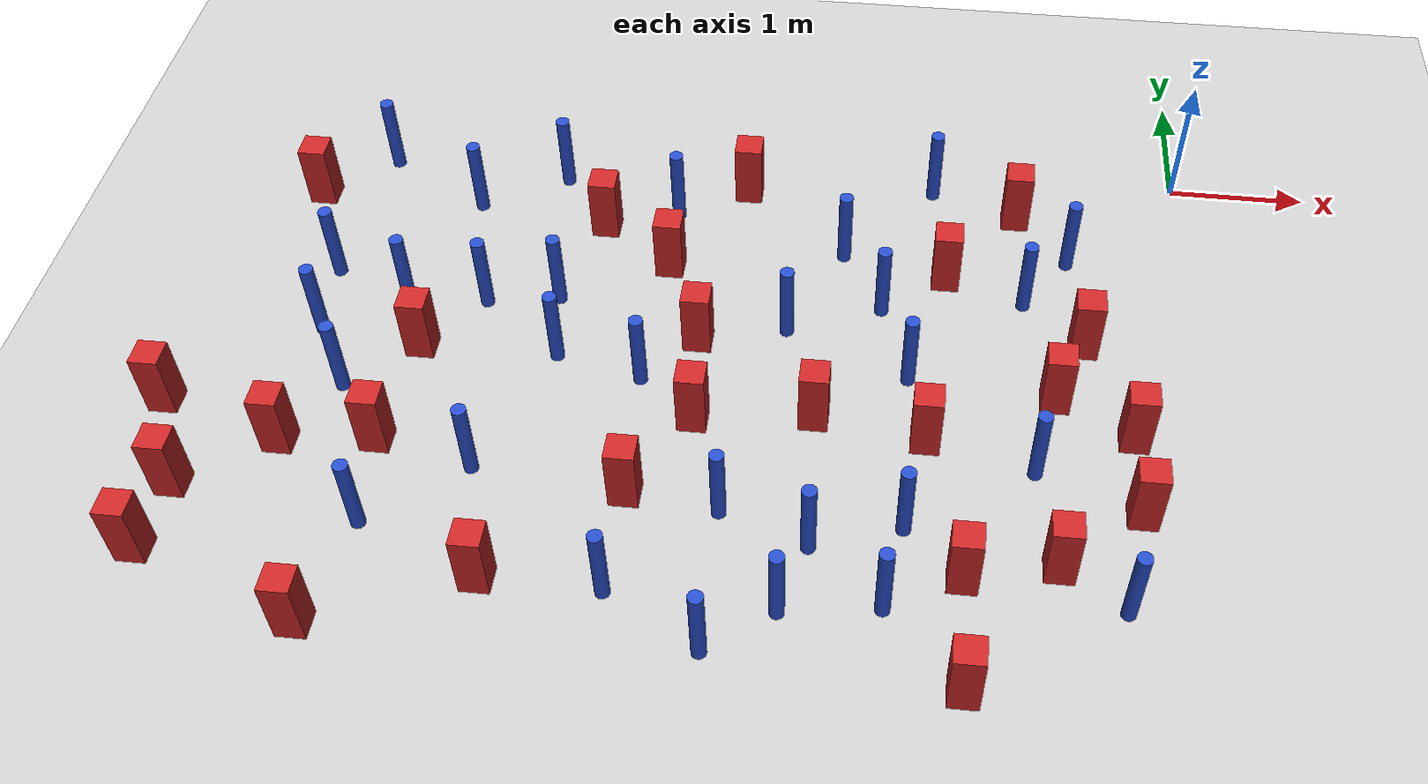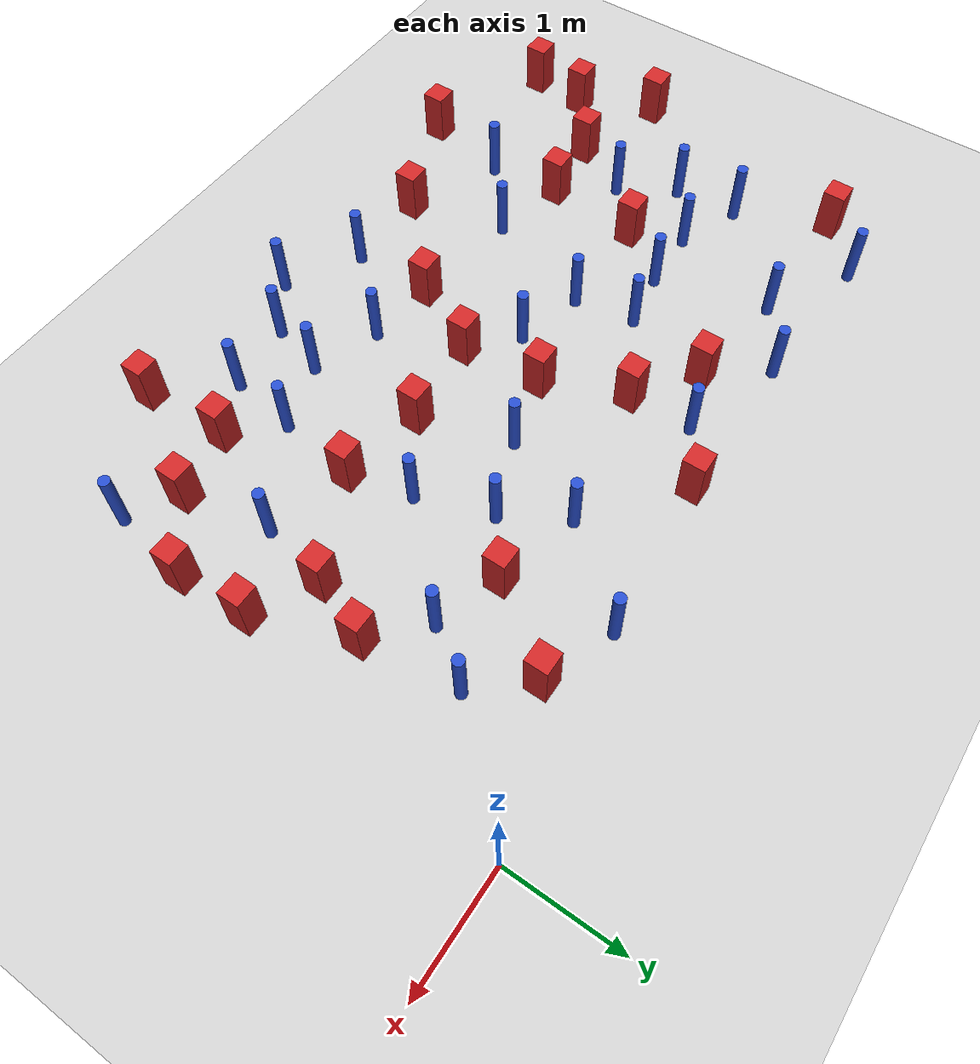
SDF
<sdf version="1.6">
 <world name="default">
  <model name="ground_plane">
   <static>1</static>
   <link name="link">
    <collision name="collision">
     <geometry><plane><normal>0 0 1</normal><size>100 100</size></plane></geometry>
     <surface><friction><ode><mu>100</mu><mu2>50</mu2></ode></friction></surface>
    </collision>
    <visual name="visual">
     <cast_shadows>0</cast_shadows>
     <geometry><plane><normal>0 0 1</normal><size>100 100</size></plane></geometry>
     <material>
      <ambient>1.0 1.0 1.0 1.0</ambient>
      <diffuse>0.8 0.8 0.8 1.0</diffuse>
      <specular>0.01 0.01 0.01 1.000000</specular>
     </material>
    </visual>
   </link>
  </model>
  <model name="square_post_obstacle0">
   <static>true</static>
   <pose>-5.44429254474 -3.06406377027 -6.11067671241e-07 -5.50515727128e-06 -8.79689657224e-07 2.37013304536e-05</pose>
   <link name="link">
    <pose>0 0 0.25 0 -0 0</pose>
    <inertial>
     <mass>100</mass>
     <inertia>
      <ixx>0.166667</ixx>
      <ixy>0</ixy>
      <ixz>0</ixz>
      <iyy>0.166667</iyy>
      <iyz>0</iyz>
      <izz>0.166667</izz>
     </inertia>
    </inertial>
    <collision name="collision"><geometry><box><size>.2 .2 .5</size></box></geometry></collision>
    <visual name="visual">
     <geometry><box><size>.2 .2 .5</size></box></geometry>
     <material>
      <script><name>Gazebo/Red</name><uri>file://media/materials/scripts/gazebo.material</uri></script>
     </material>
    </visual>
   </link>
  </model>
  <model name="pole_obstacle0">
   <static>true</static>
   <pose>-1.83436711731 -0.227464030052 -9.47619616065e-06 5.49618799737e-07 2.36310414055e-07 -1.55090534804e-07</pose>
   <link name="link">
    <pose>0 0 0.3 0 -0 0</pose>
    <inertial>
     <mass>1</mass>
     <inertia><ixx>0.145833</ixx><ixy>0</ixy><ixz>0</ixz><iyy>0.145833</iyy><iyz>0</iyz><izz>0.125</izz></inertia>
    </inertial>
    <collision name="collision">
     <geometry><cylinder><radius>0.05</radius><length>.6</length></cylinder></geometry>
    </collision>
    <visual name="visual">
     <geometry><cylinder><radius>0.05</radius><length>.6</length></cylinder></geometry>
     <material>
      <script><name>Gazebo/Blue</name><uri>file://media/materials/scripts/gazebo.material</uri></script>
     </material>
    </visual>
   </link>
  </model>
  <model name="pole_obstacle5">
   <static>true</static>
   <pose>-5.575924807 -1.74550367517 -9.47619616065e-06 5.49618799738e-07 2.36310414071e-07 -1.55090534796e-07</pose>
   <link name="link">
    <pose>0 0 0.3 0 -0 0</pose>
    <inertial>
     <mass>1</mass>
     <inertia><ixx>0.145833</ixx><ixy>0</ixy><ixz>0</ixz><iyy>0.145833</iyy><iyz>0</iyz><izz>0.125</izz></inertia>
    </inertial>
    <collision name="collision">
     <geometry><cylinder><radius>0.05</radius><length>.6</length></cylinder></geometry>
    </collision>
    <visual name="visual">
     <geometry><cylinder><radius>0.05</radius><length>.6</length></cylinder></geometry>
     <material>
      <script><name>Gazebo/Blue</name><uri>file://media/materials/scripts/gazebo.material</uri></script>
     </material>
    </visual>
   </link>
  </model>
  <model name="square_post_obstacle8">
   <static>true</static>
   <pose>-4.27476580129 -0.846139673667 -6.11067671241e-07 -5.50515727128e-06 -8.79689657224e-07 2.37013304536e-05</pose>
   <link name="link">
    <pose>0 0 0.25 0 -0 0</pose>
    <inertial>
     <mass>100</mass>
     <inertia>
      <ixx>0.166667</ixx>
      <ixy>0</ixy>
      <ixz>0</ixz>
      <iyy>0.166667</iyy>
      <iyz>0</iyz>
      <izz>0.166667</izz>
     </inertia>
    </inertial>
    <collision name="collision"><geometry><box><size>.2 .2 .5</size></box></geometry></collision>
    <visual name="visual">
     <geometry><box><size>.2 .2 .5</size></box></geometry>
     <material>
      <script><name>Gazebo/Red</name><uri>file://media/materials/scripts/gazebo.material</uri></script>
     </material>
    </visual>
   </link>
  </model>
  <model name="square_post_obstacle9">
   <static>true</static>
   <pose>-5.35893049867 -2.19606106675 -6.11067671241e-07 -5.50515727128e-06 -8.79689657224e-07 2.37013304536e-05</pose>
   <link name="link">
    <pose>0 0 0.25 0 -0 0</pose>
    <inertial>
     <mass>100</mass>
     <inertia>
      <ixx>0.166667</ixx>
      <ixy>0</ixy>
      <ixz>0</ixz>
      <iyy>0.166667</iyy>
      <iyz>0</iyz>
      <izz>0.166667</izz>
     </inertia>
    </inertial>
    <collision name="collision"><geometry><box><size>.2 .2 .5</size></box></geometry></collision>
    <visual name="visual">
     <geometry><box><size>.2 .2 .5</size></box></geometry>
     <material>
      <script><name>Gazebo/Red</name><uri>file://media/materials/scripts/gazebo.material</uri></script>
     </material>
    </visual>
   </link>
  </model>
  <model name="square_post_obstacle11">
   <static>true</static>
   <pose>-1.5191931623 -3.78393811664 -6.11067671241e-07 -5.50515727128e-06 -8.79689657224e-07 2.37013304536e-05</pose>
   <link name="link">
    <pose>0 0 0.25 0 -0 0</pose>
    <inertial>
     <mass>100</mass>
     <inertia>
      <ixx>0.166667</ixx>
      <ixy>0</ixy>
      <ixz>0</ixz>
      <iyy>0.166667</iyy>
      <iyz>0</iyz>
      <izz>0.166667</izz>
     </inertia>
    </inertial>
    <collision name="collision"><geometry><box><size>.2 .2 .5</size></box></geometry></collision>
    <visual name="visual">
     <geometry><box><size>.2 .2 .5</size></box></geometry>
     <material>
      <script><name>Gazebo/Red</name><uri>file://media/materials/scripts/gazebo.material</uri></script>
     </material>
    </visual>
   </link>
  </model>
  <model name="square_post_obstacle13">
   <static>true</static>
   <pose>-1.71121926636 -1.15659849565 -6.11067671241e-07 -5.50515727128e-06 -8.79689657224e-07 2.37013304536e-05</pose>
   <link name="link">
    <pose>0 0 0.25 0 -0 0</pose>
    <inertial>
     <mass>100</mass>
     <inertia>
      <ixx>0.166667</ixx>
      <ixy>0</ixy>
      <ixz>0</ixz>
      <iyy>0.166667</iyy>
      <iyz>0</iyz>
      <izz>0.166667</izz>
     </inertia>
    </inertial>
    <collision name="collision"><geometry><box><size>.2 .2 .5</size></box></geometry></collision>
    <visual name="visual">
     <geometry><box><size>.2 .2 .5</size></box></geometry>
     <material>
      <script><name>Gazebo/Red</name><uri>file://media/materials/scripts/gazebo.material</uri></script>
     </material>
    </visual>
   </link>
  </model>
  <model name="square_post_obstacle22">
   <static>true</static>
   <pose>-2.55298718495 -2.57654762107 -6.11067671241e-07 -5.50515727128e-06 -8.79689657224e-07 2.37013304536e-05</pose>
   <link name="link">
    <pose>0 0 0.25 0 -0 0</pose>
    <inertial>
     <mass>100</mass>
     <inertia>
      <ixx>0.166667</ixx>
      <ixy>0</ixy>
      <ixz>0</ixz>
      <iyy>0.166667</iyy>
      <iyz>0</iyz>
      <izz>0.166667</izz>
     </inertia>
    </inertial>
    <collision name="collision"><geometry><box><size>.2 .2 .5</size></box></geometry></collision>
    <visual name="visual">
     <geometry><box><size>.2 .2 .5</size></box></geometry>
     <material>
      <script><name>Gazebo/Red</name><uri>file://media/materials/scripts/gazebo.material</uri></script>
     </material>
    </visual>
   </link>
  </model>
  <model name="pole_obstacle19">
   <static>true</static>
   <pose>-5.81511914102 -2.60940523514 -9.47619616065e-06 5.49618799738e-07 2.36310414051e-07 -1.55090534805e-07</pose>
   <link name="link">
    <pose>0 0 0.3 0 -0 0</pose>
    <inertial>
     <mass>1</mass>
     <inertia><ixx>0.145833</ixx><ixy>0</ixy><ixz>0</ixz><iyy>0.145833</iyy><iyz>0</iyz><izz>0.125</izz></inertia>
    </inertial>
    <collision name="collision">
     <geometry><cylinder><radius>0.05</radius><length>.6</length></cylinder></geometry>
    </collision>
    <visual name="visual">
     <geometry><cylinder><radius>0.05</radius><length>.6</length></cylinder></geometry>
     <material>
      <script><name>Gazebo/Blue</name><uri>file://media/materials/scripts/gazebo.material</uri></script>
     </material>
    </visual>
   </link>
  </model>
  <model name="pole_obstacle22">
   <static>true</static>
   <pose>-2.81631984991 -1.78072205169 -9.47619616065e-06 5.49618799737e-07 2.36310414072e-07 -1.55090534793e-07</pose>
   <link name="link">
    <pose>0 0 0.3 0 -0 0</pose>
    <inertial>
     <mass>1</mass>
     <inertia><ixx>0.145833</ixx><ixy>0</ixy><ixz>0</ixz><iyy>0.145833</iyy><iyz>0</iyz><izz>0.125</izz></inertia>
    </inertial>
    <collision name="collision">
     <geometry><cylinder><radius>0.05</radius><length>.6</length></cylinder></geometry>
    </collision>
    <visual name="visual">
     <geometry><cylinder><radius>0.05</radius><length>.6</length></cylinder></geometry>
     <material>
      <script><name>Gazebo/Blue</name><uri>file://media/materials/scripts/gazebo.material</uri></script>
     </material>
    </visual>
   </link>
  </model>
  <model name="pole_obstacle31">
   <static>true</static>
   <pose>-0.498230822589 -3.91938672448 -9.47619616065e-06 5.49618799737e-07 2.36310414073e-07 -1.55090534793e-07</pose>
   <link name="link">
    <pose>0 0 0.3 0 -0 0</pose>
    <inertial>
     <mass>1</mass>
     <inertia><ixx>0.145833</ixx><ixy>0</ixy><ixz>0</ixz><iyy>0.145833</iyy><iyz>0</iyz><izz>0.125</izz></inertia>
    </inertial>
    <collision name="collision">
     <geometry><cylinder><radius>0.05</radius><length>.6</length></cylinder></geometry>
    </collision>
    <visual name="visual">
     <geometry><cylinder><radius>0.05</radius><length>.6</length></cylinder></geometry>
     <material>
      <script><name>Gazebo/Blue</name><uri>file://media/materials/scripts/gazebo.material</uri></script>
     </material>
    </visual>
   </link>
  </model>
  <model name="pole_obstacle38">
   <static>true</static>
   <pose>-2.46660298325 -0.980682767073 -9.47619616065e-06 5.49618799737e-07 2.36310414076e-07 -1.55090534793e-07</pose>
   <link name="link">
    <pose>0 0 0.3 0 -0 0</pose>
    <inertial>
     <mass>1</mass>
     <inertia><ixx>0.145833</ixx><ixy>0</ixy><ixz>0</ixz><iyy>0.145833</iyy><iyz>0</iyz><izz>0.125</izz></inertia>
    </inertial>
    <collision name="collision">
     <geometry><cylinder><radius>0.05</radius><length>.6</length></cylinder></geometry>
    </collision>
    <visual name="visual">
     <geometry><cylinder><radius>0.05</radius><length>.6</length></cylinder></geometry>
     <material>
      <script><name>Gazebo/Blue</name><uri>file://media/materials/scripts/gazebo.material</uri></script>
     </material>
    </visual>
   </link>
  </model>
  <model name="pole_obstacle39">
   <static>true</static>
   <pose>-3.75317586805 -0.654598744421 -9.47619616065e-06 5.49618799738e-07 2.36310414075e-07 -1.55090534793e-07</pose>
   <link name="link">
    <pose>0 0 0.3 0 -0 0</pose>
    <inertial>
     <mass>1</mass>
     <inertia><ixx>0.145833</ixx><ixy>0</ixy><ixz>0</ixz><iyy>0.145833</iyy><iyz>0</iyz><izz>0.125</izz></inertia>
    </inertial>
    <collision name="collision">
     <geometry><cylinder><radius>0.05</radius><length>.6</length></cylinder></geometry>
    </collision>
    <visual name="visual">
     <geometry><cylinder><radius>0.05</radius><length>.6</length></cylinder></geometry>
     <material>
      <script><name>Gazebo/Blue</name><uri>file://media/materials/scripts/gazebo.material</uri></script>
     </material>
    </visual>
   </link>
  </model>
  <model name="square_post_obstacle40">
   <static>true</static>
   <pose>-0.403941408825 -2.54546781091 -6.11067671241e-07 -5.50515727128e-06 -8.79689657224e-07 2.37013304536e-05</pose>
   <link name="link">
    <pose>0 0 0.25 0 -0 0</pose>
    <inertial>
     <mass>100</mass>
     <inertia>
      <ixx>0.166667</ixx>
      <ixy>0</ixy>
      <ixz>0</ixz>
      <iyy>0.166667</iyy>
      <iyz>0</iyz>
      <izz>0.166667</izz>
     </inertia>
    </inertial>
    <collision name="collision"><geometry><box><size>.2 .2 .5</size></box></geometry></collision>
    <visual name="visual">
     <geometry><box><size>.2 .2 .5</size></box></geometry>
     <material>
      <script><name>Gazebo/Red</name><uri>file://media/materials/scripts/gazebo.material</uri></script>
     </material>
    </visual>
   </link>
  </model>
  <model name="pole_obstacle52">
   <static>true</static>
   <pose>-6.11242464394 -2.10046495949 -9.47619616065e-06 5.49618799738e-07 2.36310414051e-07 -1.55090534805e-07</pose>
   <link name="link">
    <pose>0 0 0.3 0 -0 0</pose>
    <inertial>
     <mass>1</mass>
     <inertia><ixx>0.145833</ixx><ixy>0</ixy><ixz>0</ixz><iyy>0.145833</iyy><iyz>0</iyz><izz>0.125</izz></inertia>
    </inertial>
    <collision name="collision">
     <geometry><cylinder><radius>0.05</radius><length>.6</length></cylinder></geometry>
    </collision>
    <visual name="visual">
     <geometry><cylinder><radius>0.05</radius><length>.6</length></cylinder></geometry>
     <material>
      <script><name>Gazebo/Blue</name><uri>file://media/materials/scripts/gazebo.material</uri></script>
     </material>
    </visual>
   </link>
  </model>
  <model name="square_post_obstacle63">
   <static>true</static>
   <pose>-4.52064359879 -4.0861659698 -6.11067671241e-07 -5.50515727128e-06 -8.79689657224e-07 2.37013304536e-05</pose>
   <link name="link">
    <pose>0 0 0.25 0 -0 0</pose>
    <inertial>
     <mass>100</mass>
     <inertia>
      <ixx>0.166667</ixx>
      <ixy>0</ixy>
      <ixz>0</ixz>
      <iyy>0.166667</iyy>
      <iyz>0</iyz>
      <izz>0.166667</izz>
     </inertia>
    </inertial>
    <collision name="collision"><geometry><box><size>.2 .2 .5</size></box></geometry></collision>
    <visual name="visual">
     <geometry><box><size>.2 .2 .5</size></box></geometry>
     <material>
      <script><name>Gazebo/Red</name><uri>file://media/materials/scripts/gazebo.material</uri></script>
     </material>
    </visual>
   </link>
  </model>
  <model name="pole_obstacle65">
   <static>true</static>
   <pose>-6.15731712754 -1.51898210789 -9.47619616065e-06 5.49618799738e-07 2.36310414071e-07 -1.55090534796e-07</pose>
   <link name="link">
    <pose>0 0 0.3 0 -0 0</pose>
    <inertial>
     <mass>1</mass>
     <inertia><ixx>0.145833</ixx><ixy>0</ixy><ixz>0</ixz><iyy>0.145833</iyy><iyz>0</iyz><izz>0.125</izz></inertia>
    </inertial>
    <collision name="collision">
     <geometry><cylinder><radius>0.05</radius><length>.6</length></cylinder></geometry>
    </collision>
    <visual name="visual">
     <geometry><cylinder><radius>0.05</radius><length>.6</length></cylinder></geometry>
     <material>
      <script><name>Gazebo/Blue</name><uri>file://media/materials/scripts/gazebo.material</uri></script>
     </material>
    </visual>
   </link>
  </model>
  <model name="pole_obstacle71">
   <static>true</static>
   <pose>-5.27250789635 -0.710956393885 -9.47619616065e-06 5.49618799737e-07 2.36310414061e-07 -1.550905348e-07</pose>
   <link name="link">
    <pose>0 0 0.3 0 -0 0</pose>
    <inertial>
     <mass>1</mass>
     <inertia><ixx>0.145833</ixx><ixy>0</ixy><ixz>0</ixz><iyy>0.145833</iyy><iyz>0</iyz><izz>0.125</izz></inertia>
    </inertial>
    <collision name="collision">
     <geometry><cylinder><radius>0.05</radius><length>.6</length></cylinder></geometry>
    </collision>
    <visual name="visual">
     <geometry><cylinder><radius>0.05</radius><length>.6</length></cylinder></geometry>
     <material>
      <script><name>Gazebo/Blue</name><uri>file://media/materials/scripts/gazebo.material</uri></script>
     </material>
    </visual>
   </link>
  </model>
  <model name="pole_obstacle79">
   <static>true</static>
   <pose>-3.7780253012 -2.34186267636 -9.47619616065e-06 5.49618799737e-07 2.36310414067e-07 -1.55090534797e-07</pose>
   <link name="link">
    <pose>0 0 0.3 0 -0 0</pose>
    <inertial>
     <mass>1</mass>
     <inertia><ixx>0.145833</ixx><ixy>0</ixy><ixz>0</ixz><iyy>0.145833</iyy><iyz>0</iyz><izz>0.125</izz></inertia>
    </inertial>
    <collision name="collision">
     <geometry><cylinder><radius>0.05</radius><length>.6</length></cylinder></geometry>
    </collision>
    <visual name="visual">
     <geometry><cylinder><radius>0.05</radius><length>.6</length></cylinder></geometry>
     <material>
      <script><name>Gazebo/Blue</name><uri>file://media/materials/scripts/gazebo.material</uri></script>
     </material>
    </visual>
   </link>
  </model>
  <model name="pole_obstacle93">
   <static>true</static>
   <pose>-3.07743183196 -4.45914448067 -9.47619616065e-06 5.49618799738e-07 2.3631041406e-07 -1.55090534801e-07</pose>
   <link name="link">
    <pose>0 0 0.3 0 -0 0</pose>
    <inertial>
     <mass>1</mass>
     <inertia><ixx>0.145833</ixx><ixy>0</ixy><ixz>0</ixz><iyy>0.145833</iyy><iyz>0</iyz><izz>0.125</izz></inertia>
    </inertial>
    <collision name="collision">
     <geometry><cylinder><radius>0.05</radius><length>.6</length></cylinder></geometry>
    </collision>
    <visual name="visual">
     <geometry><cylinder><radius>0.05</radius><length>.6</length></cylinder></geometry>
     <material>
      <script><name>Gazebo/Blue</name><uri>file://media/materials/scripts/gazebo.material</uri></script>
     </material>
    </visual>
   </link>
  </model>
  <model name="pole_obstacle94">
   <static>true</static>
   <pose>-6.04612509161 -0.285052684151 -9.47619616065e-06 5.49618799737e-07 2.36310414075e-07 -1.55090534794e-07</pose>
   <link name="link">
    <pose>0 0 0.3 0 -0 0</pose>
    <inertial>
     <mass>1</mass>
     <inertia><ixx>0.145833</ixx><ixy>0</ixy><ixz>0</ixz><iyy>0.145833</iyy><iyz>0</iyz><izz>0.125</izz></inertia>
    </inertial>
    <collision name="collision">
     <geometry><cylinder><radius>0.05</radius><length>.6</length></cylinder></geometry>
    </collision>
    <visual name="visual">
     <geometry><cylinder><radius>0.05</radius><length>.6</length></cylinder></geometry>
     <material>
      <script><name>Gazebo/Blue</name><uri>file://media/materials/scripts/gazebo.material</uri></script>
     </material>
    </visual>
   </link>
  </model>
  <model name="square_post_obstacle86">
   <static>true</static>
   <pose>-0.72183801679 -1.72916454835 -6.11067671241e-07 -5.50515727128e-06 -8.79689657224e-07 2.37013304536e-05</pose>
   <link name="link">
    <pose>0 0 0.25 0 -0 0</pose>
    <inertial>
     <mass>100</mass>
     <inertia>
      <ixx>0.166667</ixx>
      <ixy>0</ixy>
      <ixz>0</ixz>
      <iyy>0.166667</iyy>
      <iyz>0</iyz>
      <izz>0.166667</izz>
     </inertia>
    </inertial>
    <collision name="collision"><geometry><box><size>.2 .2 .5</size></box></geometry></collision>
    <visual name="visual">
     <geometry><box><size>.2 .2 .5</size></box></geometry>
     <material>
      <script><name>Gazebo/Red</name><uri>file://media/materials/scripts/gazebo.material</uri></script>
     </material>
    </visual>
   </link>
  </model>
  <model name="pole_obstacle102">
   <static>true</static>
   <pose>-5.3818508251 -3.7387501205 -9.47619616065e-06 5.49618799738e-07 2.36310414051e-07 -1.55090534805e-07</pose>
   <link name="link">
    <pose>0 0 0.3 0 -0 0</pose>
    <inertial>
     <mass>1</mass>
     <inertia><ixx>0.145833</ixx><ixy>0</ixy><ixz>0</ixz><iyy>0.145833</iyy><iyz>0</iyz><izz>0.125</izz></inertia>
    </inertial>
    <collision name="collision">
     <geometry><cylinder><radius>0.05</radius><length>.6</length></cylinder></geometry>
    </collision>
    <visual name="visual">
     <geometry><cylinder><radius>0.05</radius><length>.6</length></cylinder></geometry>
     <material>
      <script><name>Gazebo/Blue</name><uri>file://media/materials/scripts/gazebo.material</uri></script>
     </material>
    </visual>
   </link>
  </model>
  <model name="pole_obstacle106">
   <static>true</static>
   <pose>-1.93604591729 -2.15594950026 -9.47619616065e-06 5.49618799737e-07 2.36310414062e-07 -1.55090534798e-07</pose>
   <link name="link">
    <pose>0 0 0.3 0 -0 0</pose>
    <inertial>
     <mass>1</mass>
     <inertia><ixx>0.145833</ixx><ixy>0</ixy><ixz>0</ixz><iyy>0.145833</iyy><iyz>0</iyz><izz>0.125</izz></inertia>
    </inertial>
    <collision name="collision">
     <geometry><cylinder><radius>0.05</radius><length>.6</length></cylinder></geometry>
    </collision>
    <visual name="visual">
     <geometry><cylinder><radius>0.05</radius><length>.6</length></cylinder></geometry>
     <material>
      <script><name>Gazebo/Blue</name><uri>file://media/materials/scripts/gazebo.material</uri></script>
     </material>
    </visual>
   </link>
  </model>
  <model name="pole_obstacle107">
   <static>true</static>
   <pose>-4.76496916021 -3.22601966384 -9.47619616065e-06 5.49618799738e-07 2.36310414051e-07 -1.55090534805e-07</pose>
   <link name="link">
    <pose>0 0 0.3 0 -0 0</pose>
    <inertial>
     <mass>1</mass>
     <inertia><ixx>0.145833</ixx><ixy>0</ixy><ixz>0</ixz><iyy>0.145833</iyy><iyz>0</iyz><izz>0.125</izz></inertia>
    </inertial>
    <collision name="collision">
     <geometry><cylinder><radius>0.05</radius><length>.6</length></cylinder></geometry>
    </collision>
    <visual name="visual">
     <geometry><cylinder><radius>0.05</radius><length>.6</length></cylinder></geometry>
     <material>
      <script><name>Gazebo/Blue</name><uri>file://media/materials/scripts/gazebo.material</uri></script>
     </material>
    </visual>
   </link>
  </model>
  <model name="square_post_obstacle96">
   <static>true</static>
   <pose>-3.71541146356 -3.33661944113 -6.11067671241e-07 -5.50515727128e-06 -8.79689657224e-07 2.37013304536e-05</pose>
   <link name="link">
    <pose>0 0 0.25 0 -0 0</pose>
    <inertial>
     <mass>100</mass>
     <inertia>
      <ixx>0.166667</ixx>
      <ixy>0</ixy>
      <ixz>0</ixz>
      <iyy>0.166667</iyy>
      <iyz>0</iyz>
      <izz>0.166667</izz>
     </inertia>
    </inertial>
    <collision name="collision"><geometry><box><size>.2 .2 .5</size></box></geometry></collision>
    <visual name="visual">
     <geometry><box><size>.2 .2 .5</size></box></geometry>
     <material>
      <script><name>Gazebo/Red</name><uri>file://media/materials/scripts/gazebo.material</uri></script>
     </material>
    </visual>
   </link>
  </model>
  <model name="pole_obstacle109">
   <static>true</static>
   <pose>-2.49528522785 -3.63279533557 -9.47619616065e-06 5.49618799737e-07 2.36310414051e-07 -1.55090534807e-07</pose>
   <link name="link">
    <pose>0 0 0.3 0 -0 0</pose>
    <inertial>
     <mass>1</mass>
     <inertia><ixx>0.145833</ixx><ixy>0</ixy><ixz>0</ixz><iyy>0.145833</iyy><iyz>0</iyz><izz>0.125</izz></inertia>
    </inertial>
    <collision name="collision">
     <geometry><cylinder><radius>0.05</radius><length>.6</length></cylinder></geometry>
    </collision>
    <visual name="visual">
     <geometry><cylinder><radius>0.05</radius><length>.6</length></cylinder></geometry>
     <material>
      <script><name>Gazebo/Blue</name><uri>file://media/materials/scripts/gazebo.material</uri></script>
     </material>
    </visual>
   </link>
  </model>
  <model name="square_post_obstacle97">
   <static>true</static>
   <pose>-1.79469296406 -2.70174388878 -6.11067671241e-07 -5.50515727128e-06 -8.79689657224e-07 2.37013304536e-05</pose>
   <link name="link">
    <pose>0 0 0.25 0 -0 0</pose>
    <inertial>
     <mass>100</mass>
     <inertia>
      <ixx>0.166667</ixx>
      <ixy>0</ixy>
      <ixz>0</ixz>
      <iyy>0.166667</iyy>
      <iyz>0</iyz>
      <izz>0.166667</izz>
     </inertia>
    </inertial>
    <collision name="collision"><geometry><box><size>.2 .2 .5</size></box></geometry></collision>
    <visual name="visual">
     <geometry><box><size>.2 .2 .5</size></box></geometry>
     <material>
      <script><name>Gazebo/Red</name><uri>file://media/materials/scripts/gazebo.material</uri></script>
     </material>
    </visual>
   </link>
  </model>
  <model name="pole_obstacle114">
   <static>true</static>
   <pose>-3.09218615693 -3.41958563562 -9.47619616065e-06 5.49618799737e-07 2.36310414067e-07 -1.55090534797e-07</pose>
   <link name="link">
    <pose>0 0 0.3 0 -0 0</pose>
    <inertial>
     <mass>1</mass>
     <inertia><ixx>0.145833</ixx><ixy>0</ixy><ixz>0</ixz><iyy>0.145833</iyy><iyz>0</iyz><izz>0.125</izz></inertia>
    </inertial>
    <collision name="collision">
     <geometry><cylinder><radius>0.05</radius><length>.6</length></cylinder></geometry>
    </collision>
    <visual name="visual">
     <geometry><cylinder><radius>0.05</radius><length>.6</length></cylinder></geometry>
     <material>
      <script><name>Gazebo/Blue</name><uri>file://media/materials/scripts/gazebo.material</uri></script>
     </material>
    </visual>
   </link>
  </model>
  <model name="square_post_obstacle114">
   <static>true</static>
   <pose>-3.73257108974 -1.22541229802 -6.11067671241e-07 -5.50515727128e-06 -8.79689657224e-07 2.37013304536e-05</pose>
   <link name="link">
    <pose>0 0 0.25 0 -0 0</pose>
    <inertial>
     <mass>100</mass>
     <inertia>
      <ixx>0.166667</ixx>
      <ixy>0</ixy>
      <ixz>0</ixz>
      <iyy>0.166667</iyy>
      <iyz>0</iyz>
      <izz>0.166667</izz>
     </inertia>
    </inertial>
    <collision name="collision"><geometry><box><size>.2 .2 .5</size></box></geometry></collision>
    <visual name="visual">
     <geometry><box><size>.2 .2 .5</size></box></geometry>
     <material>
      <script><name>Gazebo/Red</name><uri>file://media/materials/scripts/gazebo.material</uri></script>
     </material>
    </visual>
   </link>
  </model>
  <model name="pole_obstacle135">
   <static>true</static>
   <pose>-1.90186260228 -3.43017462354 -9.47619616065e-06 5.49618799737e-07 2.36310414062e-07 -1.55090534798e-07</pose>
   <link name="link">
    <pose>0 0 0.3 0 -0 0</pose>
    <inertial>
     <mass>1</mass>
     <inertia><ixx>0.145833</ixx><ixy>0</ixy><ixz>0</ixz><iyy>0.145833</iyy><iyz>0</iyz><izz>0.125</izz></inertia>
    </inertial>
    <collision name="collision">
     <geometry><cylinder><radius>0.05</radius><length>.6</length></cylinder></geometry>
    </collision>
    <visual name="visual">
     <geometry><cylinder><radius>0.05</radius><length>.6</length></cylinder></geometry>
     <material>
      <script><name>Gazebo/Blue</name><uri>file://media/materials/scripts/gazebo.material</uri></script>
     </material>
    </visual>
   </link>
  </model>
  <model name="square_post_obstacle119">
   <static>true</static>
   <pose>-1.20578528459 -0.455967621517 -6.11067671241e-07 -5.50515727128e-06 -8.79689657224e-07 2.37013304536e-05</pose>
   <link name="link">
    <pose>0 0 0.25 0 -0 0</pose>
    <inertial>
     <mass>100</mass>
     <inertia>
      <ixx>0.166667</ixx>
      <ixy>0</ixy>
      <ixz>0</ixz>
      <iyy>0.166667</iyy>
      <iyz>0</iyz>
      <izz>0.166667</izz>
     </inertia>
    </inertial>
    <collision name="collision"><geometry><box><size>.2 .2 .5</size></box></geometry></collision>
    <visual name="visual">
     <geometry><box><size>.2 .2 .5</size></box></geometry>
     <material>
      <script><name>Gazebo/Red</name><uri>file://media/materials/scripts/gazebo.material</uri></script>
     </material>
    </visual>
   </link>
  </model>
  <model name="square_post_obstacle124">
   <static>true</static>
   <pose>-6.08672959579 -3.14068873937 -6.11067671241e-07 -5.50515727128e-06 -8.79689657224e-07 2.37013304536e-05</pose>
   <link name="link">
    <pose>0 0 0.25 0 -0 0</pose>
    <inertial>
     <mass>100</mass>
     <inertia>
      <ixx>0.166667</ixx>
      <ixy>0</ixy>
      <ixz>0</ixz>
      <iyy>0.166667</iyy>
      <iyz>0</iyz>
      <izz>0.166667</izz>
     </inertia>
    </inertial>
    <collision name="collision"><geometry><box><size>.2 .2 .5</size></box></geometry></collision>
    <visual name="visual">
     <geometry><box><size>.2 .2 .5</size></box></geometry>
     <material>
      <script><name>Gazebo/Red</name><uri>file://media/materials/scripts/gazebo.material</uri></script>
     </material>
    </visual>
   </link>
  </model>
  <model name="square_post_obstacle135">
   <static>true</static>
   <pose>-3.36556249535 -2.66933973783 -6.11067671241e-07 -5.50515727128e-06 -8.79689657224e-07 2.37013304536e-05</pose>
   <link name="link">
    <pose>0 0 0.25 0 -0 0</pose>
    <inertial>
     <mass>100</mass>
     <inertia>
      <ixx>0.166667</ixx>
      <ixy>0</ixy>
      <ixz>0</ixz>
      <iyy>0.166667</iyy>
      <iyz>0</iyz>
      <izz>0.166667</izz>
     </inertia>
    </inertial>
    <collision name="collision"><geometry><box><size>.2 .2 .5</size></box></geometry></collision>
    <visual name="visual">
     <geometry><box><size>.2 .2 .5</size></box></geometry>
     <material>
      <script><name>Gazebo/Red</name><uri>file://media/materials/scripts/gazebo.material</uri></script>
     </material>
    </visual>
   </link>
  </model>
  <model name="pole_obstacle147">
   <static>true</static>
   <pose>-5.00233321357 -1.71743368529 -9.47619616065e-06 5.49618799738e-07 2.36310414071e-07 -1.55090534796e-07</pose>
   <link name="link">
    <pose>0 0 0.3 0 -0 0</pose>
    <inertial>
     <mass>1</mass>
     <inertia><ixx>0.145833</ixx><ixy>0</ixy><ixz>0</ixz><iyy>0.145833</iyy><iyz>0</iyz><izz>0.125</izz></inertia>
    </inertial>
    <collision name="collision">
     <geometry><cylinder><radius>0.05</radius><length>.6</length></cylinder></geometry>
    </collision>
    <visual name="visual">
     <geometry><cylinder><radius>0.05</radius><length>.6</length></cylinder></geometry>
     <material>
      <script><name>Gazebo/Blue</name><uri>file://media/materials/scripts/gazebo.material</uri></script>
     </material>
    </visual>
   </link>
  </model>
  <model name="square_post_obstacle141">
   <static>true</static>
   <pose>-6.97237181929 -2.87465225569 -6.11067671241e-07 -5.50515727128e-06 -8.79689657224e-07 2.37013304536e-05</pose>
   <link name="link">
    <pose>0 0 0.25 0 -0 0</pose>
    <inertial>
     <mass>100</mass>
     <inertia>
      <ixx>0.166667</ixx>
      <ixy>0</ixy>
      <ixz>0</ixz>
      <iyy>0.166667</iyy>
      <iyz>0</iyz>
      <izz>0.166667</izz>
     </inertia>
    </inertial>
    <collision name="collision"><geometry><box><size>.2 .2 .5</size></box></geometry></collision>
    <visual name="visual">
     <geometry><box><size>.2 .2 .5</size></box></geometry>
     <material>
      <script><name>Gazebo/Red</name><uri>file://media/materials/scripts/gazebo.material</uri></script>
     </material>
    </visual>
   </link>
  </model>
  <model name="square_post_obstacle147">
   <static>true</static>
   <pose>-3.24523063971 -0.351925419087 -6.11067671241e-07 -5.50515727128e-06 -8.79689657224e-07 2.37013304536e-05</pose>
   <link name="link">
    <pose>0 0 0.25 0 -0 0</pose>
    <inertial>
     <mass>100</mass>
     <inertia>
      <ixx>0.166667</ixx>
      <ixy>0</ixy>
      <ixz>0</ixz>
      <iyy>0.166667</iyy>
      <iyz>0</iyz>
      <izz>0.166667</izz>
     </inertia>
    </inertial>
    <collision name="collision"><geometry><box><size>.2 .2 .5</size></box></geometry></collision>
    <visual name="visual">
     <geometry><box><size>.2 .2 .5</size></box></geometry>
     <material>
      <script><name>Gazebo/Red</name><uri>file://media/materials/scripts/gazebo.material</uri></script>
     </material>
    </visual>
   </link>
  </model>
  <model name="pole_obstacle157">
   <static>true</static>
   <pose>-4.66599748768 -0.354454311541 -9.47619616065e-06 5.49618799737e-07 2.36310414057e-07 -1.55090534802e-07</pose>
   <link name="link">
    <pose>0 0 0.3 0 -0 0</pose>
    <inertial>
     <mass>1</mass>
     <inertia><ixx>0.145833</ixx><ixy>0</ixy><ixz>0</ixz><iyy>0.145833</iyy><iyz>0</iyz><izz>0.125</izz></inertia>
    </inertial>
    <collision name="collision">
     <geometry><cylinder><radius>0.05</radius><length>.6</length></cylinder></geometry>
    </collision>
    <visual name="visual">
     <geometry><cylinder><radius>0.05</radius><length>.6</length></cylinder></geometry>
     <material>
      <script><name>Gazebo/Blue</name><uri>file://media/materials/scripts/gazebo.material</uri></script>
     </material>
    </visual>
   </link>
  </model>
  <model name="square_post_obstacle152">
   <static>true</static>
   <pose>-6.50530092078 -0.703835477007 -6.11067671241e-07 -5.50515727128e-06 -8.79689657224e-07 2.37013304536e-05</pose>
   <link name="link">
    <pose>0 0 0.25 0 -0 0</pose>
    <inertial>
     <mass>100</mass>
     <inertia>
      <ixx>0.166667</ixx>
      <ixy>0</ixy>
      <ixz>0</ixz>
      <iyy>0.166667</iyy>
      <iyz>0</iyz>
      <izz>0.166667</izz>
     </inertia>
    </inertial>
    <collision name="collision"><geometry><box><size>.2 .2 .5</size></box></geometry></collision>
    <visual name="visual">
     <geometry><box><size>.2 .2 .5</size></box></geometry>
     <material>
      <script><name>Gazebo/Red</name><uri>file://media/materials/scripts/gazebo.material</uri></script>
     </material>
    </visual>
   </link>
  </model>
  <model name="pole_obstacle169">
   <static>true</static>
   <pose>-2.64227186716 -4.13354950674 -9.47619616065e-06 5.49618799738e-07 2.3631041406e-07 -1.55090534801e-07</pose>
   <link name="link">
    <pose>0 0 0.3 0 -0 0</pose>
    <inertial>
     <mass>1</mass>
     <inertia><ixx>0.145833</ixx><ixy>0</ixy><ixz>0</ixz><iyy>0.145833</iyy><iyz>0</iyz><izz>0.125</izz></inertia>
    </inertial>
    <collision name="collision">
     <geometry><cylinder><radius>0.05</radius><length>.6</length></cylinder></geometry>
    </collision>
    <visual name="visual">
     <geometry><cylinder><radius>0.05</radius><length>.6</length></cylinder></geometry>
     <material>
      <script><name>Gazebo/Blue</name><uri>file://media/materials/scripts/gazebo.material</uri></script>
     </material>
    </visual>
   </link>
  </model>
  <model name="pole_obstacle170">
   <static>true</static>
   <pose>-1.14220915628 -1.35286308674 -9.47619616065e-06 5.49618799737e-07 2.36310414065e-07 -1.55090534798e-07</pose>
   <link name="link">
    <pose>0 0 0.3 0 -0 0</pose>
    <inertial>
     <mass>1</mass>
     <inertia><ixx>0.145833</ixx><ixy>0</ixy><ixz>0</ixz><iyy>0.145833</iyy><iyz>0</iyz><izz>0.125</izz></inertia>
    </inertial>
    <collision name="collision">
     <geometry><cylinder><radius>0.05</radius><length>.6</length></cylinder></geometry>
    </collision>
    <visual name="visual">
     <geometry><cylinder><radius>0.05</radius><length>.6</length></cylinder></geometry>
     <material>
      <script><name>Gazebo/Blue</name><uri>file://media/materials/scripts/gazebo.material</uri></script>
     </material>
    </visual>
   </link>
  </model>
  <model name="pole_obstacle171">
   <static>true</static>
   <pose>-1.06236195649 -2.89274226648 -9.47619616065e-06 5.49618799737e-07 2.36310414062e-07 -1.55090534798e-07</pose>
   <link name="link">
    <pose>0 0 0.3 0 -0 0</pose>
    <inertial>
     <mass>1</mass>
     <inertia><ixx>0.145833</ixx><ixy>0</ixy><ixz>0</ixz><iyy>0.145833</iyy><iyz>0</iyz><izz>0.125</izz></inertia>
    </inertial>
    <collision name="collision">
     <geometry><cylinder><radius>0.05</radius><length>.6</length></cylinder></geometry>
    </collision>
    <visual name="visual">
     <geometry><cylinder><radius>0.05</radius><length>.6</length></cylinder></geometry>
     <material>
      <script><name>Gazebo/Blue</name><uri>file://media/materials/scripts/gazebo.material</uri></script>
     </material>
    </visual>
   </link>
  </model>
  <model name="pole_obstacle177">
   <static>true</static>
   <pose>-2.15721428547 -1.51006662111 -9.47619616065e-06 5.49618799737e-07 2.36310414072e-07 -1.55090534793e-07</pose>
   <link name="link">
    <pose>0 0 0.3 0 -0 0</pose>
    <inertial>
     <mass>1</mass>
     <inertia><ixx>0.145833</ixx><ixy>0</ixy><ixz>0</ixz><iyy>0.145833</iyy><iyz>0</iyz><izz>0.125</izz></inertia>
    </inertial>
    <collision name="collision">
     <geometry><cylinder><radius>0.05</radius><length>.6</length></cylinder></geometry>
    </collision>
    <visual name="visual">
     <geometry><cylinder><radius>0.05</radius><length>.6</length></cylinder></geometry>
     <material>
      <script><name>Gazebo/Blue</name><uri>file://media/materials/scripts/gazebo.material</uri></script>
     </material>
    </visual>
   </link>
  </model>
  <model name="pole_obstacle178">
   <static>true</static>
   <pose>-3.7294476963 -4.09868036253 -9.47619616065e-06 5.49618799738e-07 2.3631041406e-07 -1.55090534801e-07</pose>
   <link name="link">
    <pose>0 0 0.3 0 -0 0</pose>
    <inertial>
     <mass>1</mass>
     <inertia><ixx>0.145833</ixx><ixy>0</ixy><ixz>0</ixz><iyy>0.145833</iyy><iyz>0</iyz><izz>0.125</izz></inertia>
    </inertial>
    <collision name="collision">
     <geometry><cylinder><radius>0.05</radius><length>.6</length></cylinder></geometry>
    </collision>
    <visual name="visual">
     <geometry><cylinder><radius>0.05</radius><length>.6</length></cylinder></geometry>
     <material>
      <script><name>Gazebo/Blue</name><uri>file://media/materials/scripts/gazebo.material</uri></script>
     </material>
    </visual>
   </link>
  </model>
  <model name="square_post_obstacle172">
   <static>true</static>
   <pose>-0.927791535741 -2.25394568173 -6.11067671241e-07 -5.50515727128e-06 -8.79689657224e-07 2.37013304536e-05</pose>
   <link name="link">
    <pose>0 0 0.25 0 -0 0</pose>
    <inertial>
     <mass>100</mass>
     <inertia>
      <ixx>0.166667</ixx>
      <ixy>0</ixy>
      <ixz>0</ixz>
      <iyy>0.166667</iyy>
      <iyz>0</iyz>
      <izz>0.166667</izz>
     </inertia>
    </inertial>
    <collision name="collision"><geometry><box><size>.2 .2 .5</size></box></geometry></collision>
    <visual name="visual">
     <geometry><box><size>.2 .2 .5</size></box></geometry>
     <material>
      <script><name>Gazebo/Red</name><uri>file://media/materials/scripts/gazebo.material</uri></script>
     </material>
    </visual>
   </link>
  </model>
  <model name="pole_obstacle184">
   <static>true</static>
   <pose>-4.39487876305 -2.18305439237 -9.47619616065e-06 5.49618799738e-07 2.36310414051e-07 -1.55090534805e-07</pose>
   <link name="link">
    <pose>0 0 0.3 0 -0 0</pose>
    <inertial>
     <mass>1</mass>
     <inertia><ixx>0.145833</ixx><ixy>0</ixy><ixz>0</ixz><iyy>0.145833</iyy><iyz>0</iyz><izz>0.125</izz></inertia>
    </inertial>
    <collision name="collision">
     <geometry><cylinder><radius>0.05</radius><length>.6</length></cylinder></geometry>
    </collision>
    <visual name="visual">
     <geometry><cylinder><radius>0.05</radius><length>.6</length></cylinder></geometry>
     <material>
      <script><name>Gazebo/Blue</name><uri>file://media/materials/scripts/gazebo.material</uri></script>
     </material>
    </visual>
   </link>
  </model>
  <model name="square_post_obstacle185">
   <static>true</static>
   <pose>-0.377145667331 -3.17458245696 -6.11067671241e-07 -5.50515727128e-06 -8.79689657224e-07 2.37013304536e-05</pose>
   <link name="link">
    <pose>0 0 0.25 0 -0 0</pose>
    <inertial>
     <mass>100</mass>
     <inertia>
      <ixx>0.166667</ixx>
      <ixy>0</ixy>
      <ixz>0</ixz>
      <iyy>0.166667</iyy>
      <iyz>0</iyz>
      <izz>0.166667</izz>
     </inertia>
    </inertial>
    <collision name="collision"><geometry><box><size>.2 .2 .5</size></box></geometry></collision>
    <visual name="visual">
     <geometry><box><size>.2 .2 .5</size></box></geometry>
     <material>
      <script><name>Gazebo/Red</name><uri>file://media/materials/scripts/gazebo.material</uri></script>
     </material>
    </visual>
   </link>
  </model>
  <model name="square_post_obstacle193">
   <static>true</static>
   <pose>-6.6695072362 -3.5648721928 -6.11067671241e-07 -5.50515727128e-06 -8.79689657224e-07 2.37013304536e-05</pose>
   <link name="link">
    <pose>0 0 0.25 0 -0 0</pose>
    <inertial>
     <mass>100</mass>
     <inertia>
      <ixx>0.166667</ixx>
      <ixy>0</ixy>
      <ixz>0</ixz>
      <iyy>0.166667</iyy>
      <iyz>0</iyz>
      <izz>0.166667</izz>
     </inertia>
    </inertial>
    <collision name="collision"><geometry><box><size>.2 .2 .5</size></box></geometry></collision>
    <visual name="visual">
     <geometry><box><size>.2 .2 .5</size></box></geometry>
     <material>
      <script><name>Gazebo/Red</name><uri>file://media/materials/scripts/gazebo.material</uri></script>
     </material>
    </visual>
   </link>
  </model>
  <model name="square_post_obstacle196">
   <static>true</static>
   <pose>-6.72311961621 -4.08895672567 -6.11067671241e-07 -5.50515727128e-06 -8.79689657224e-07 2.37013304536e-05</pose>
   <link name="link">
    <pose>0 0 0.25 0 -0 0</pose>
    <inertial>
     <mass>100</mass>
     <inertia>
      <ixx>0.166667</ixx>
      <ixy>0</ixy>
      <ixz>0</ixz>
      <iyy>0.166667</iyy>
      <iyz>0</iyz>
      <izz>0.166667</izz>
     </inertia>
    </inertial>
    <collision name="collision"><geometry><box><size>.2 .2 .5</size></box></geometry></collision>
    <visual name="visual">
     <geometry><box><size>.2 .2 .5</size></box></geometry>
     <material>
      <script><name>Gazebo/Red</name><uri>file://media/materials/scripts/gazebo.material</uri></script>
     </material>
    </visual>
   </link>
  </model>
  <model name="square_post_obstacle200">
   <static>true</static>
   <pose>-1.49299845909 -4.57953587313 -6.11067671241e-07 -5.50515727128e-06 -8.79689657224e-07 2.37013304536e-05</pose>
   <link name="link">
    <pose>0 0 0.25 0 -0 0</pose>
    <inertial>
     <mass>100</mass>
     <inertia>
      <ixx>0.166667</ixx>
      <ixy>0</ixy>
      <ixz>0</ixz>
      <iyy>0.166667</iyy>
      <iyz>0</iyz>
      <izz>0.166667</izz>
     </inertia>
    </inertial>
    <collision name="collision"><geometry><box><size>.2 .2 .5</size></box></geometry></collision>
    <visual name="visual">
     <geometry><box><size>.2 .2 .5</size></box></geometry>
     <material>
      <script><name>Gazebo/Red</name><uri>file://media/materials/scripts/gazebo.material</uri></script>
     </material>
    </visual>
   </link>
  </model>
  <model name="square_post_obstacle201">
   <static>true</static>
   <pose>-5.55092138537 -4.51973542509 -6.11067671241e-07 -5.50515727128e-06 -8.79689657224e-07 2.37013304536e-05</pose>
   <link name="link">
    <pose>0 0 0.25 0 -0 0</pose>
    <inertial>
     <mass>100</mass>
     <inertia>
      <ixx>0.166667</ixx>
      <ixy>0</ixy>
      <ixz>0</ixz>
      <iyy>0.166667</iyy>
      <iyz>0</iyz>
      <izz>0.166667</izz>
     </inertia>
    </inertial>
    <collision name="collision"><geometry><box><size>.2 .2 .5</size></box></geometry></collision>
    <visual name="visual">
     <geometry><box><size>.2 .2 .5</size></box></geometry>
     <material>
      <script><name>Gazebo/Red</name><uri>file://media/materials/scripts/gazebo.material</uri></script>
     </material>
    </visual>
   </link>
  </model>
  <model name="pole_obstacle188">
   <static>true</static>
   <pose>-0.82583832495 -0.898188546912 -9.47619616065e-06 5.49618799737e-07 2.36310414058e-07 -1.55090534802e-07</pose>
   <link name="link">
    <pose>0 0 0.3 0 -0 0</pose>
    <inertial>
     <mass>1</mass>
     <inertia><ixx>0.145833</ixx><ixy>0</ixy><ixz>0</ixz><iyy>0.145833</iyy><iyz>0</iyz><izz>0.125</izz></inertia>
    </inertial>
    <collision name="collision">
     <geometry><cylinder><radius>0.05</radius><length>.6</length></cylinder></geometry>
    </collision>
    <visual name="visual">
     <geometry><cylinder><radius>0.05</radius><length>.6</length></cylinder></geometry>
     <material>
      <script><name>Gazebo/Blue</name><uri>file://media/materials/scripts/gazebo.material</uri></script>
     </material>
    </visual>
   </link>
  </model>
  <model name="pole_obstacle194">
   <static>true</static>
   <pose>-4.4846037003 -1.63118741718 -9.47619616065e-06 5.49618799738e-07 2.36310414071e-07 -1.55090534796e-07</pose>
   <link name="link">
    <pose>0 0 0.3 0 -0 0</pose>
    <inertial>
     <mass>1</mass>
     <inertia><ixx>0.145833</ixx><ixy>0</ixy><ixz>0</ixz><iyy>0.145833</iyy><iyz>0</iyz><izz>0.125</izz></inertia>
    </inertial>
    <collision name="collision">
     <geometry><cylinder><radius>0.05</radius><length>.6</length></cylinder></geometry>
    </collision>
    <visual name="visual">
     <geometry><cylinder><radius>0.05</radius><length>.6</length></cylinder></geometry>
     <material>
      <script><name>Gazebo/Blue</name><uri>file://media/materials/scripts/gazebo.material</uri></script>
     </material>
    </visual>
   </link>
  </model>
  <model name="pole_obstacle200">
   <static>true</static>
   <pose>-1.99976193321 -4.04572634138 -9.47619616065e-06 5.49618799737e-07 2.3631041406e-07 -1.550905348e-07</pose>
   <link name="link">
    <pose>0 0 0.3 0 -0 0</pose>
    <inertial>
     <mass>1</mass>
     <inertia><ixx>0.145833</ixx><ixy>0</ixy><ixz>0</ixz><iyy>0.145833</iyy><iyz>0</iyz><izz>0.125</izz></inertia>
    </inertial>
    <collision name="collision">
     <geometry><cylinder><radius>0.05</radius><length>.6</length></cylinder></geometry>
    </collision>
    <visual name="visual">
     <geometry><cylinder><radius>0.05</radius><length>.6</length></cylinder></geometry>
     <material>
      <script><name>Gazebo/Blue</name><uri>file://media/materials/scripts/gazebo.material</uri></script>
     </material>
    </visual>
   </link>
  </model>
  <model name="square_post_obstacle231">
   <static>true</static>
   <pose>-3.4298700498 -1.94058002312 -6.11067671241e-07 -5.50515727128e-06 -8.79689657224e-07 2.37013304536e-05</pose>
   <link name="link">
    <pose>0 0 0.25 0 -0 0</pose>
    <inertial>
     <mass>100</mass>
     <inertia>
      <ixx>0.166667</ixx>
      <ixy>0</ixy>
      <ixz>0</ixz>
      <iyy>0.166667</iyy>
      <iyz>0</iyz>
      <izz>0.166667</izz>
     </inertia>
    </inertial>
    <collision name="collision"><geometry><box><size>.2 .2 .5</size></box></geometry></collision>
    <visual name="visual">
     <geometry><box><size>.2 .2 .5</size></box></geometry>
     <material>
      <script><name>Gazebo/Red</name><uri>file://media/materials/scripts/gazebo.material</uri></script>
     </material>
    </visual>
   </link>
  </model>
  <model name="square_post_obstacle243">
   <static>true</static>
   <pose>-0.919243049797 -3.64364002312 -6.11067671241e-07 -5.50515727128e-06 -8.79689657224e-07 2.37013304536e-05</pose>
   <link name="link">
    <pose>0 0 0.25 0 -0 0</pose>
    <inertial>
     <mass>100</mass>
     <inertia>
      <ixx>0.166667</ixx>
      <ixy>0</ixy>
      <ixz>0</ixz>
      <iyy>0.166667</iyy>
      <iyz>0</iyz>
      <izz>0.166667</izz>
     </inertia>
    </inertial>
    <collision name="collision"><geometry><box><size>.2 .2 .5</size></box></geometry></collision>
    <visual name="visual">
     <geometry><box><size>.2 .2 .5</size></box></geometry>
     <material>
      <script><name>Gazebo/Red</name><uri>file://media/materials/scripts/gazebo.material</uri></script>
     </material>
    </visual>
   </link>
  </model>
 </world>
</sdf>
